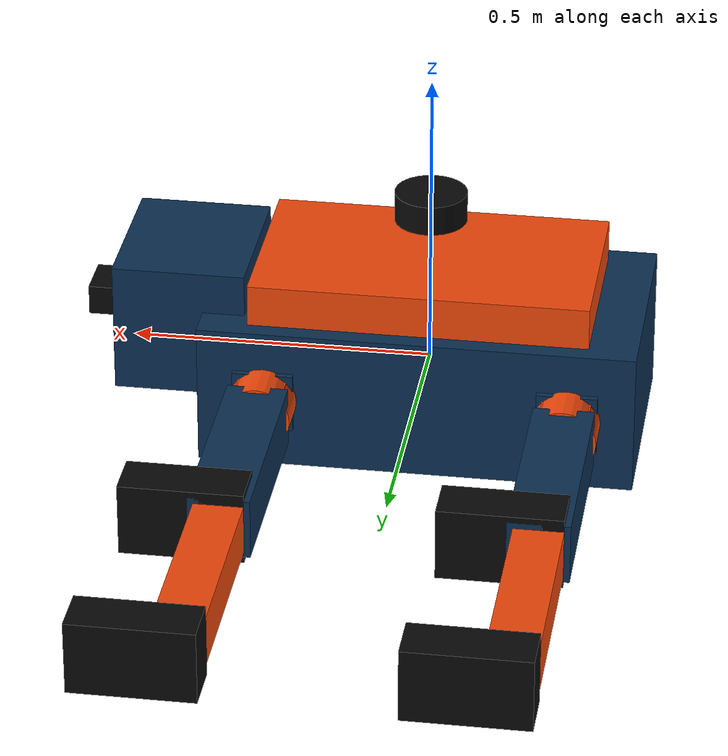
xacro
<?xml version="1.0"?>
<!-- Interface principale de la description du robot-chien. -->
<!-- Ce fichier assemble la description robot sans mélanger la description de l'usine. -->
<robot xmlns:xacro="http://www.ros.org/wiki/xacro" name="factory_dog">
  <!-- Charge la géométrie, les articulations, les capteurs et les plugins Gazebo. -->
  <xacro:include filename="$(find dog_robot_description)/urdf/dog_robot_core.xacro"/>
</robot>

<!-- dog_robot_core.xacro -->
<robot xmlns:xacro="http://www.ros.org/wiki/xacro" name="factory_dog">
  <xacro:arg name="use_sim" default="true"/>
  <material name="dog_blue"><color rgba="0.04 0.18 0.32 1"/></material>
  <material name="dog_orange"><color rgba="0.95 0.28 0.04 1"/></material>
  <material name="rubber"><color rgba="0.03 0.03 0.03 1"/></material>
  <xacro:macro name="box_inertial" params="mass x y z"><inertial><mass value="${mass}"/><inertia ixx="${mass*(y*y+z*z)/12}" ixy="0" ixz="0" iyy="${mass*(x*x+z*z)/12}" iyz="0" izz="${mass*(x*x+y*y)/12}"/></inertial></xacro:macro>
  <xacro:macro name="link_box" params="name mass x y z material"><link name="${name}"><visual><origin xyz="0 0 0"/><geometry><box size="${x} ${y} ${z}"/></geometry><material name="${material}"/></visual><collision><geometry><box size="${x} ${y} ${z}"/></geometry></collision><xacro:box_inertial mass="${mass}" x="${x}" y="${y}" z="${z}"/></link></xacro:macro>
  <link name="base_link"><visual><geometry><box size="0.72 0.38 0.24"/></geometry><material name="dog_blue"/></visual><collision><geometry><box size="0.72 0.38 0.24"/></geometry></collision><xacro:box_inertial mass="18" x="0.72" y="0.38" z="0.24"/></link>
  <link name="body_shell"><visual><origin xyz="0 0 0.13"/><geometry><box size="0.56 0.32 0.12"/></geometry><material name="dog_orange"/></visual><collision><origin xyz="0 0 0.13"/><geometry><box size="0.56 0.32 0.12"/></geometry></collision><xacro:box_inertial mass="2" x="0.56" y="0.32" z="0.12"/></link>
  <joint name="body_shell_fixed" type="fixed"><parent link="base_link"/><child link="body_shell"/><origin xyz="0 0 0"/></joint>
  <link name="head_link"><visual><geometry><box size="0.22 0.26 0.22"/></geometry><material name="dog_blue"/></visual><collision><geometry><box size="0.22 0.26 0.22"/></geometry></collision><xacro:box_inertial mass="2" x="0.22" y="0.26" z="0.22"/></link>
  <joint name="neck_joint" type="revolute"><parent link="base_link"/><child link="head_link"/><origin xyz="0.40 0 0.08"/><axis xyz="0 0 1"/><limit lower="-0.7" upper="0.7" effort="20" velocity="2"/></joint>
  <link name="lidar_link"><visual><geometry><cylinder radius="0.06" length="0.05"/></geometry><material name="rubber"/></visual><collision><geometry><cylinder radius="0.06" length="0.05"/></geometry></collision><xacro:box_inertial mass="0.2" x="0.1" y="0.1" z="0.05"/></link>
  <joint name="lidar_fixed" type="fixed"><parent link="base_link"/><child link="lidar_link"/><origin xyz="0 0 0.28"/></joint>
  <link name="camera_link"><visual><geometry><box size="0.06 0.08 0.05"/></geometry><material name="rubber"/></visual><collision><geometry><box size="0.06 0.08 0.05"/></geometry></collision><xacro:box_inertial mass="0.1" x="0.06" y="0.08" z="0.05"/></link>
  <joint name="camera_fixed" type="fixed"><parent link="head_link"/><child link="camera_link"/><origin xyz="0.14 0 0" rpy="0 0 0"/></joint>
  <xacro:macro name="leg" params="prefix x y sign"><link name="${prefix}_hip"><visual><geometry><cylinder radius="0.055" length="0.12"/></geometry><material name="dog_orange"/></visual><collision><geometry><cylinder radius="0.055" length="0.12"/></geometry></collision><xacro:box_inertial mass="0.6" x="0.12" y="0.12" z="0.12"/></link><joint name="${prefix}_hip_joint" type="revolute"><parent link="base_link"/><child link="${prefix}_hip"/><origin xyz="${x} ${y} 0" rpy="1.5708 0 0"/><axis xyz="0 0 1"/><limit lower="-1.1" upper="1.1" effort="60" velocity="5"/></joint><link name="${prefix}_thigh"><visual><origin xyz="0 0 -0.18"/><geometry><box size="0.10 0.10 0.36"/></geometry><material name="dog_blue"/></visual><collision><origin xyz="0 0 -0.18"/><geometry><box size="0.10 0.10 0.36"/></geometry></collision><xacro:box_inertial mass="1.2" x="0.1" y="0.1" z="0.36"/></link><joint name="${prefix}_knee_joint" type="revolute"><parent link="${prefix}_hip"/><child link="${prefix}_thigh"/><origin xyz="0 0 -0.04"/><axis xyz="0 1 0"/><limit lower="-2.2" upper="0.3" effort="80" velocity="6"/></joint><link name="${prefix}_shin"><visual><origin xyz="0 0 -0.16"/><geometry><box size="0.08 0.08 0.32"/></geometry><material name="dog_orange"/></visual><collision><origin xyz="0 0 -0.16"/><geometry><box size="0.08 0.08 0.32"/></geometry></collision><xacro:box_inertial mass="0.8" x="0.08" y="0.08" z="0.32"/></link><joint name="${prefix}_ankle_joint" type="revolute"><parent link="${prefix}_thigh"/><child link="${prefix}_shin"/><origin xyz="0 0 -0.36"/><axis xyz="0 1 0"/><limit lower="-1.4" upper="1.4" effort="60" velocity="6"/></joint><link name="${prefix}_foot"><visual><origin xyz="0.06 0 -0.04"/><geometry><box size="0.20 0.12 0.08"/></geometry><material name="rubber"/></visual><collision><origin xyz="0.06 0 -0.04"/><geometry><box size="0.20 0.12 0.08"/></geometry></collision><xacro:box_inertial mass="0.5" x="0.2" y="0.12" z="0.08"/></link><joint name="${prefix}_foot_joint" type="fixed"><parent link="${prefix}_shin"/><child link="${prefix}_foot"/><origin xyz="0 0 -0.32"/></joint></xacro:macro>
  <xacro:leg prefix="front_left" x="0.25" y="0.20" sign="1"/><xacro:leg prefix="front_right" x="0.25" y="-0.20" sign="-1"/><xacro:leg prefix="rear_left" x="-0.25" y="0.20" sign="1"/><xacro:leg prefix="rear_right" x="-0.25" y="-0.20" sign="-1"/>
  <gazebo reference="base_link"><material>Gazebo/Blue</material><mu1>0.8</mu1><mu2>0.8</mu2></gazebo>
  <gazebo reference="lidar_link"><sensor name="factory_lidar" type="ray"><pose>0 0 0 0 0 0</pose><update_rate>15</update_rate><ray><scan><horizontal><samples>360</samples><resolution>1</resolution><min_angle>-3.14159</min_angle><max_angle>3.14159</max_angle></horizontal></scan><range><min>0.12</min><max>12.0</max><resolution>0.01</resolution></range></ray><plugin name="gazebo_ros_laser" filename="libgazebo_ros_ray_sensor.so"><ros><remapping>~/out:=scan</remapping></ros><output_type>sensor_msgs/LaserScan</output_type><frame_name>lidar_link</frame_name></plugin></sensor></gazebo>
  <gazebo reference="camera_link"><sensor name="factory_camera" type="camera"><update_rate>10</update_rate><camera><horizontal_fov>1.047</horizontal_fov><image><width>640</width><height>480</height><format>R8G8B8</format></image><clip><near>0.05</near><far>30</far></clip></camera><plugin name="camera_controller" filename="libgazebo_ros_camera.so"><ros><remapping>image_raw:=image_raw</remapping></ros><frame_name>camera_link</frame_name></plugin></sensor></gazebo>
  <gazebo><plugin name="gazebo_ros_p3d" filename="libgazebo_ros_p3d.so"><ros><remapping>odom:=odom</remapping></ros><body_name>base_link</body_name><frame_name>odom</frame_name><update_rate>50</update_rate></plugin></gazebo>
</robot>
